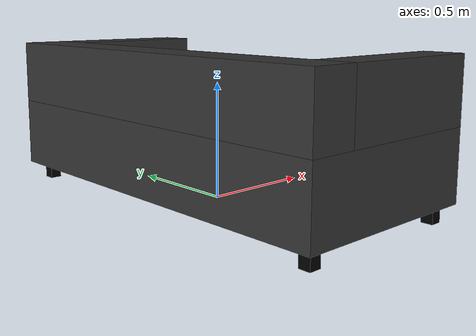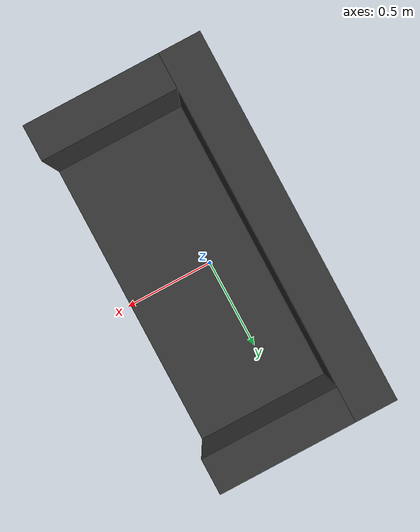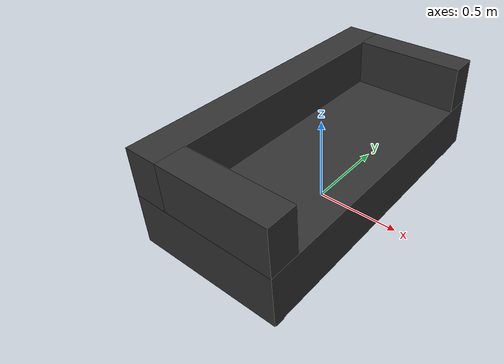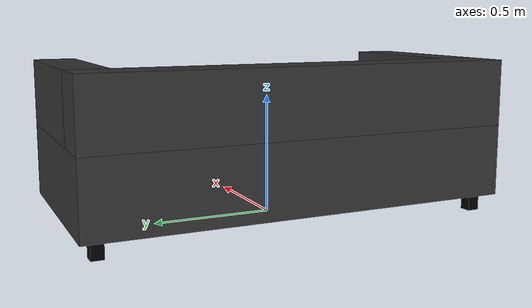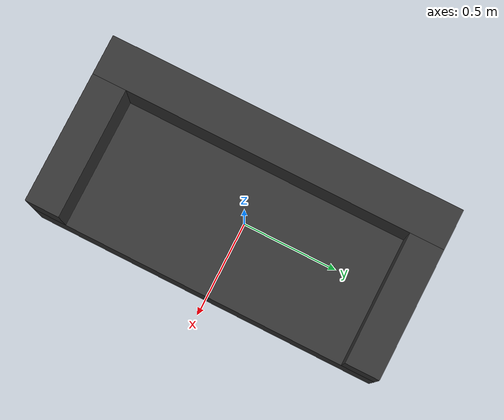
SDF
<sdf version="1.6">
    <model name="sofa">
        <static>true</static>
        <!-- Back of the sofa -->
        <link name="back">
            <pose>-0.325 0 0.5125 0 0 0</pose>
            <visual name="visual_back">
                <geometry>
                    <box>
                        <size>0.2 1.77 0.275</size>
                    </box>
                </geometry>
                <material>
                    <ambient>0.2 0.2 0.2 1</ambient> <!-- Dark grey color -->
                </material>
            </visual>
            <collision name="collision_back">
                <geometry>
                    <box>
                        <size>0.2 1.77 0.275</size>
                    </box>
                </geometry>
            </collision>
        </link>

        <!-- Left arm of the sofa -->
        <link name="left_arm">
            <pose>0.1 -0.8 0.5125 0 0 0</pose>
            <visual name="visual_left_arm">
                <geometry>
                    <box>
                        <size>0.65 0.17 0.275</size>
                    </box>
                </geometry>
                <material>
                    <ambient>0.2 0.2 0.2 1</ambient>
                </material>
            </visual>
            <collision name="collision_left_arm">
                <geometry>
                    <box>
                        <size>0.65 0.17 0.275</size>
                    </box>
                </geometry>
            </collision>
        </link>

        <!-- Right arm of the sofa -->
        <link name="right_arm">
            <pose>0.1 0.8 0.5125 0 0 0</pose>
            <visual name="visual_right_arm">
                <geometry>
                    <box>
                        <size>0.65 0.17 0.275</size>
                    </box>
                </geometry>
                <material>
                    <ambient>0.2 0.2 0.2 1</ambient>
                </material>
            </visual>
            <collision name="collision_right_arm">
                <geometry>
                    <box>
                        <size>0.65 0.17 0.275</size>
                    </box>
                </geometry>
            </collision>
        </link>

        <!-- Legs of the sofa -->
        <link name="leg_1">
            <pose>-0.345 -0.815 0.0375 0 0 0</pose>
            <visual name="visual_leg_1">
                <geometry>
                    <box>
                        <size>0.05 0.05 0.075</size>
                    </box>
                </geometry>
                <material>
                    <ambient>0 0 0 1</ambient> <!-- Black color -->
                </material>
            </visual>
            <collision name="collision_leg_1">
                <geometry>
                    <box>
                        <size>0.05 0.05 0.075</size>
                    </box>
                </geometry>
            </collision>
        </link>

        <link name="leg_2">
            <pose>-0.345 0.815 0.0375 0 0 0</pose>
            <visual name="visual_leg_2">
                <geometry>
                    <box>
                        <size>0.05 0.05 0.075</size>
                    </box>
                </geometry>
                <material>
                    <ambient>0 0 0 1</ambient>
                </material>
            </visual>
            <collision name="collision_leg_2">
                <geometry>
                    <box>
                        <size>0.05 0.05 0.075</size>
                    </box>
                </geometry>
            </collision>
        </link>

        <link name="leg_3">
            <pose>0.365 0.815 0.0375 0 0 0</pose>
            <visual name="visual_leg_3">
                <geometry>
                    <box>
                        <size>0.05 0.05 0.075</size>
                    </box>
                </geometry>
                <material>
                    <ambient>0 0 0 1</ambient>
                </material>
            </visual>
            <collision name="collision_leg_3">
                <geometry>
                    <box>
                        <size>0.05 0.05 0.075</size>
                    </box>
                </geometry>
            </collision>
        </link>

        <link name="leg_4">
            <pose>0.365 -0.815 0.0375 0 0 0</pose>
            <visual name="visual_leg_4">
                <geometry>
                    <box>
                        <size>0.05 0.05 0.075</size>
                    </box>
                </geometry>
                <material>
                    <ambient>0 0 0 1</ambient>
                </material>
            </visual>
            <collision name="collision_leg_4">
                <geometry>
                    <box>
                        <size>0.05 0.05 0.075</size>
                    </box>
                </geometry>
            </collision>
        </link>

        <!-- Seat of the sofa -->
        <link name="seat">
            <pose>0 0 0.225 0 0 0</pose>
            <visual name="visual_seat">
                <geometry>
                    <box>
                        <size>0.85 1.77 0.3</size>
                    </box>
                </geometry>
                <material>
                    <ambient>0.2 0.2 0.2 1</ambient> <!-- Dark grey color to match back and arms -->
                </material>
            </visual>
            <collision name="collision_seat">
                <geometry>
                    <box>
                        <size>0.85 1.77 0.3</size>
                    </box>
                </geometry>
            </collision>
        </link>
    </model>
</sdf>
